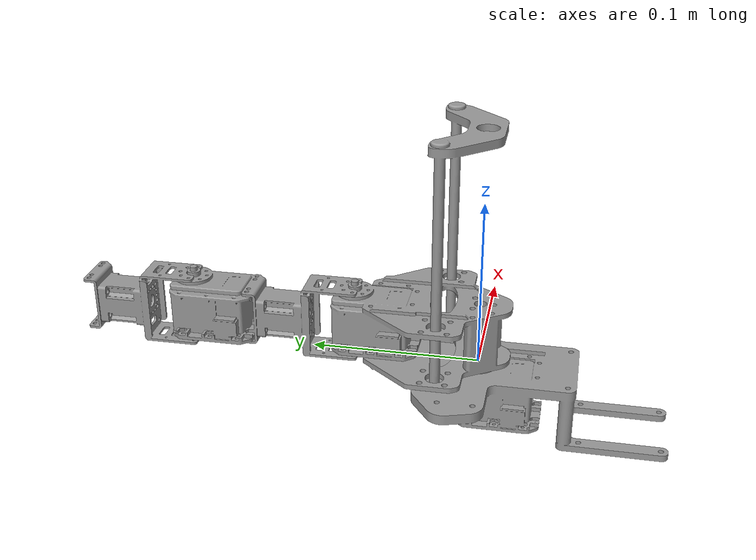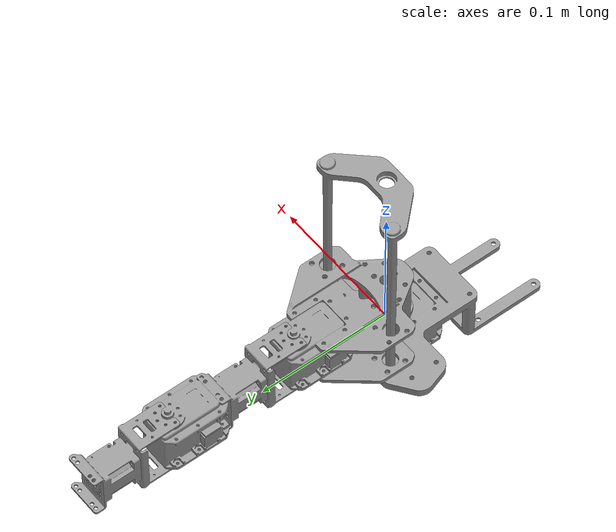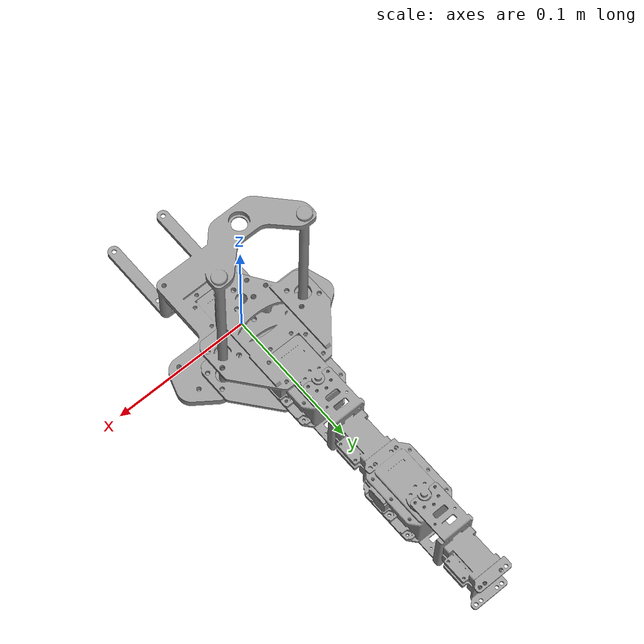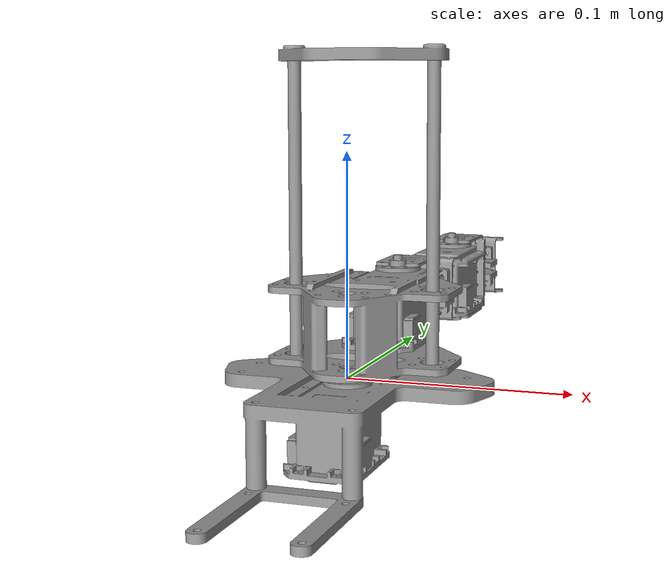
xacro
<?xml version="1.0"?>
<!-- Scara manipulator -->
<robot xmlns:xacro="http://www.ros.org/wiki/xacro" name="scara">

    <!-- Import scara urdf file -->
    <xacro:include filename="$(find scara_description)/urdf/scara_dxl.urdf" />

    <!-- Import scara materials file -->
    <xacro:include filename="$(find scara_description)/config/materials.urdf" />

    <!-- Import scara ros2_control description -->
    <xacro:include filename="$(find scara_description)/ros2_control/scara_dxl.ros2_control.urdf" />

    <!-- Import all Gazebo-customization elements -->
    <xacro:include filename="$(find scara_description)/gazebo/scara_dxl.gazebo.xacro"/>

</robot>

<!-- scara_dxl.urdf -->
<robot name = "scara" xmlns:xacro="http://www.ros.org/wiki/xacro">

  <!-- Used for fixing robot to 'base_link' -->
  <link name="world"/>

  <!-- Base Link -->
  <link name = "base_link">
    <visual>
      <origin xyz="0 0 0" rpy="0 0 0"/>
      <geometry>
        <mesh filename="package://scara_description/meshes/chain_base_link.stl" scale="0.001 0.001 0.001"/>
      </geometry>
      <material name="grey"/>
    </visual>

    <collision>
      <origin xyz="0 0 0" rpy="0 0 0"/>
      <geometry>
        <mesh filename="package://scara_description/meshes/chain_base_link.stl" scale="0.001 0.001 0.001"/>
      </geometry>
    </collision>
  </link>

  <link name = "link1">
    <visual>
      <origin xyz="0 0 0" rpy="0 0 0"/>
      <geometry>
        <mesh filename="package://scara_description/meshes/chain_link0.stl" scale="0.001 0.001 0.001"/>
      </geometry>
      <material name="grey"/>
    </visual>

    <collision>
      <origin xyz="0 0 0" rpy="0 0 0"/>
      <geometry>
        <mesh filename="package://scara_description/meshes/chain_link0.stl" scale="0.001 0.001 0.001"/>
      </geometry>
    </collision>
  </link>

  <link name = "link2">
    <visual>
      <origin xyz="0 0 0" rpy="0 0 0"/>
      <geometry>
        <mesh filename="package://scara_description/meshes/chain_link1.stl" scale="0.001 0.001 0.001"/>
      </geometry>
      <material name="grey"/>
    </visual>

    <collision>
      <origin xyz="0 0 0" rpy="0 0 0"/>
      <geometry>
        <mesh filename="package://scara_description/meshes/chain_link1.stl" scale="0.001 0.001 0.001"/>
      </geometry>
    </collision>
  </link>

  <link name = "link3">
    <visual>
      <origin xyz="0 0 0" rpy="0 0 0"/>
      <geometry>
        <mesh filename="package://scara_description/meshes/chain_link2.stl" scale="0.001 0.001 0.001"/>
      </geometry>
      <material name="grey"/>
    </visual>

    <collision>
      <origin xyz="0 0 0" rpy="0 0 0"/>
      <geometry>
        <mesh filename="package://scara_description/meshes/chain_link2.stl" scale="0.001 0.001 0.001"/>
      </geometry>
    </collision>
  </link>

  <link name="tool0"/>

  <joint name="base2world" type="fixed">
    <parent link="world"/>
    <child link="base_link"/>
  </joint>

  <joint name="joint1" type="prismatic">
    <parent link="base_link"/>
    <child link="link1"/>
    <origin xyz="0.0 0.0 0.020" rpy="0 0 0"/>
    <axis xyz="0 0 1"/>
    <limit velocity="4.8" effort="1" lower="-0.1" upper="0.1" />
  </joint>

  <joint name="joint2" type="revolute">
    <parent link="link1"/>
    <child link="link2"/>
    <origin xyz="0.0 0.0743 0.0" rpy="0 0 0.0"/>
    <axis xyz="0 0 1"/>
    <limit velocity="4.8" effort="1" lower="-0.010" upper="0.019" />
  </joint>
  <joint name="joint3" type="revolute">
    <parent link="link2"/>
    <child link="link3"/>
    <origin xyz="0.0 0.1 0.0" rpy="0 0 0.0"/>
    <axis xyz="0 0 1"/>
    <limit velocity="4.8" effort="1" lower="-0.010" upper="0.019" />
  </joint>

  <joint name="tool02link3" type="fixed">
      <origin rpy="0 0 0" xyz="0 0.1 0"/>
      <parent link="link3"/>
      <child link="tool0"/>
      <axis xyz="0 0 0"/>
  </joint>

</robot>
